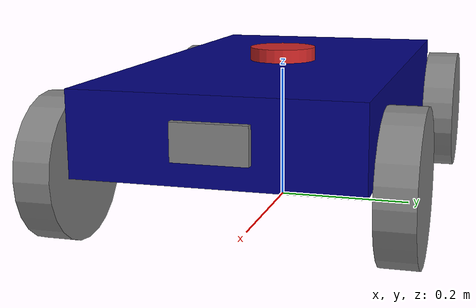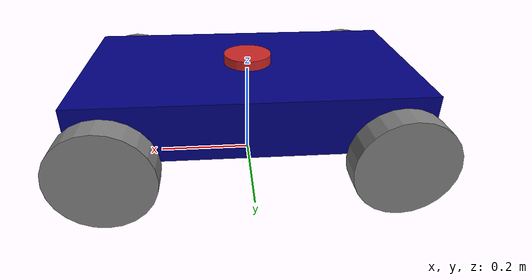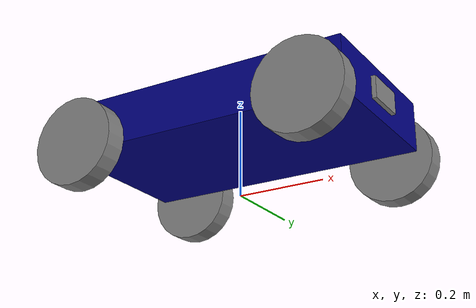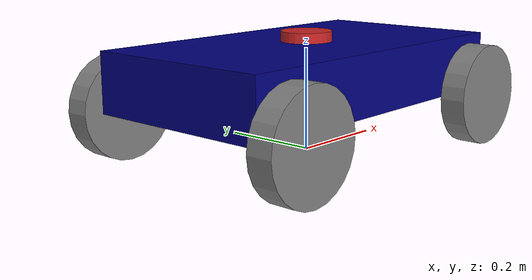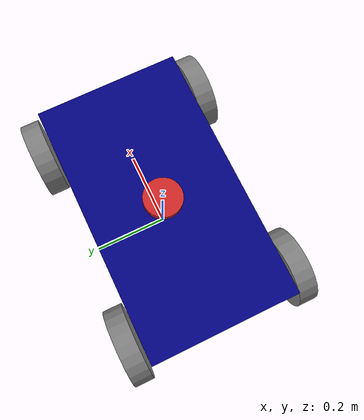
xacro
<?xml version="1.0"?>
<robot name="my_robot" xmlns:xacro="http://www.ros.org/wiki/xacro" xmlns:gz="http://gazebosim.org/schema">

    <xacro:include filename="common_properties.xacro"/>
    <xacro:include filename="mobile_base.xacro"/>
    <xacro:include filename="mobile_base_gazebo.xacro"/>
    <xacro:include filename="camera.xacro"/>
    <xacro:include filename="imu.xacro"/>
    <xacro:include filename="lidar.xacro"/>

</robot>

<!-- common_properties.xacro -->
<robot xmlns:xacro="http://www.ros.org/wiki/xacro">

    <material name="blue">
        <color rgba="0 0 0.5 1.0" />
    </material>

    <material name="grey">
        <color rgba="0.5 0.5 0.5 1.0" />
    </material>

    <material name="orange">
        <color rgba="1.0 0.5 0 1.0" />
    </material>

    <material name="yellow">
        <color rgba="1.0 1.0 0 1.0" />
    </material>

    <xacro:macro name="box_inertia" params="m x y z o_xyz o_rpy">
        <inertial>
            <mass value="${m}" />
            <origin xyz="${o_xyz}" rpy="${o_rpy}" />
            <inertia ixx="${(m/12.0) * (y*y + z*z)}" ixy="0" ixz="0"
                     iyy="${(m/12.0) * (x*x + z*z)}" iyz="0"
                     izz="${(m/12.0) * (x*x + y*y)}" />
        </inertial>
    </xacro:macro>

    <xacro:macro name="wheel_inertia" params="m r l o_xyz o_rpy">
        <inertial>
            <mass value="${m}" />
            <origin xyz="${o_xyz}" rpy="${o_rpy}" />
            <inertia ixx="${(m/12.0) * (3.0 * r * r + l * l)}" ixy="0" ixz="0"
                     iyy="${(m/12.0) * (3.0 * r * r + l * l)}" iyz="0"
                     izz="${(m/2) * (r * r)}" />
        </inertial>
    </xacro:macro>

    <xacro:macro name="caster_wheel_inertia" params="m r o_xyz o_rpy">
        <inertial>
            <mass value="${m}" />
            <origin xyz="${o_xyz}" rpy="${o_rpy}" />
            <inertia ixx="${(2.0 * m * r * r / 5)}" ixy="0" ixz="0"
                     iyy="${(2.0 * m * r * r / 5)}" iyz="0"
                     izz="${(2.0 * m * r * r / 5)}" />
        </inertial>
    </xacro:macro>

    <xacro:macro name="arm_inertia" params="m r h o_xyz o_rpy">
        <inertial>
            <mass value="${m}" />
            <origin xyz="${o_xyz}" rpy="${o_rpy}" />
            <inertia ixx="${(3.0 * m * r * r + h * h * m)/ 12}" ixy="0" ixz="0"
                     iyy="${(3.0 * m * r * r + h * h * m)/ 12}" iyz="0"
                     izz="${(m * r * r )/ 2}" />
        </inertial>
    </xacro:macro>

</robot>

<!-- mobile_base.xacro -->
<robot xmlns:xacro="http://www.ros.org/wiki/xacro">

    <xacro:property name="base_lenght" value="0.68"/>
    <xacro:property name="base_width" value="0.38"/>
    <xacro:property name="base_height" value="0.115"/>
    <xacro:property name="wheel_radius" value="0.1"/>
    <xacro:property name="wheel_length" value="0.05"/>

    <link name="base_footprint"/>

    <link name="base_link">
        <visual>
            <geometry>
                <box size="${base_lenght} ${base_width} ${base_height}" />
            </geometry>
            <origin xyz="0 0 ${base_height/2.0}" rpy="0 0 0" />
            <material name="blue" />
        </visual>
        <collision>
            <geometry>
                <!-- Narrower collision box to avoid any physical contact with the wheels -->
                <box size="${base_lenght*0.9} ${base_width*0.8} ${base_height*0.8}" />
            </geometry>
            <origin xyz="0 0 ${base_height/2.0}" rpy="0 0 0" />
       </collision>
        <xacro:box_inertia m="50.0" x="${base_lenght}" y="${base_width}" z="${base_height}"
                           o_xyz="0 0 ${base_height/2.0}" o_rpy="0 0 0" />
    </link>

    <xacro:include filename="mecanum_wheel.urdf.xacro"/>

    <joint name="base_joint" type="fixed">
        <parent link="base_footprint"/>
        <child link="base_link"/>
        <origin xyz="0 0 ${wheel_radius}" rpy="0 0 0"/>
    </joint>

    <!-- Mecanum Wheels with original cylinder visual, but mecanum collision & inertia -->
    <xacro:mecanum_wheel
        side="left_front"
        radius="${wheel_radius}"
        width="${wheel_length}"
        pos_x="${base_lenght / 2.5}"
        pos_y="${(base_width+wheel_length)/2.0 + 0.01}"
        pos_z="0"
        mass="3.0"
    />

    <xacro:mecanum_wheel
        side="right_front"
        radius="${wheel_radius}"
        width="${wheel_length}"
        pos_x="${base_lenght / 2.5}"
        pos_y="${-(base_width+wheel_length)/2.0 - 0.01}"
        pos_z="0"
        mass="3.0"
    />

    <xacro:mecanum_wheel
        side="left_back"
        radius="${wheel_radius}"
        width="${wheel_length}"
        pos_x="${-base_lenght / 2.5}"
        pos_y="${(base_width+wheel_length)/2.0 + 0.01}"
        pos_z="0"
        mass="3.0"
    />

    <xacro:mecanum_wheel
        side="right_back"
        radius="${wheel_radius}"
        width="${wheel_length}"
        pos_x="${-base_lenght / 2.5}"
        pos_y="${-(base_width+wheel_length)/2.0 - 0.01}"
        pos_z="0"
        mass="3.0"
    />

</robot>

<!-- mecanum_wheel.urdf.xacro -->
<robot xmlns:xacro="http://ros.org/wiki/xacro" xmlns:gz="http://gazebosim.org/schema">

  <xacro:macro name="mecanum_wheel" params="side radius width pos_x pos_y pos_z mass mesh_file:='' joint_name:='' link_name:=''">

    <xacro:property name="_link_name" value="${link_name if link_name != '' else side + '_wheel_link'}"/>
    <xacro:property name="_joint_name" value="${joint_name if joint_name != '' else 'base_' + side + '_wheel_joint'}"/>

    <link name="${_link_name}">
      <visual>
        <origin xyz="0 0 0" rpy="${pi/2} 0 0"/>
        <geometry>
          <cylinder radius="${radius}" length="${width}"/>
        </geometry>
        <material name="grey">
          <color rgba="0.5 0.5 0.5 1.0"/>
        </material>
      </visual>

      <collision>
        <origin xyz="0 0 0" rpy="${pi/2} 0 0"/>
        <geometry>
          <cylinder radius="${radius}" length="${width}"/>
        </geometry>
      </collision>

      <inertial>
        <origin xyz="0 0 0" rpy="0 0 0"/>
        <mass value="${mass}"/>
        <inertia ixx="${(1.0/12.0) * mass * (3.0*radius*radius + width*width)}" ixy="0" ixz="0"
                 iyy="${(1.0/2.0) * mass * (radius * radius)}" iyz="0"
                 izz="${(1.0/12.0) * mass * (3.0*radius*radius + width*width)}" />
      </inertial>
    </link>

    <gazebo reference="${_link_name}">
      <collision>
        <surface>
          <friction>
            <ode>
              <mu>1.2</mu>
              <mu2>0.15</mu2>
              <xacro:if value="${side == 'front_left' or side == 'left_front'}">
                <fdir1 gz:expressed_in="base_footprint">1 -1 0</fdir1>
              </xacro:if>
              <xacro:if value="${side == 'rear_left' or side == 'left_back'}">
                <fdir1 gz:expressed_in="base_footprint">1 1 0</fdir1>
              </xacro:if>
              <xacro:if value="${side == 'front_right' or side == 'right_front'}">
                <fdir1 gz:expressed_in="base_footprint">1 1 0</fdir1>
              </xacro:if>
              <xacro:if value="${side == 'rear_right' or side == 'right_back'}">
                <fdir1 gz:expressed_in="base_footprint">1 -1 0</fdir1>
              </xacro:if>
            </ode>
          </friction>
          <contact>
            <ode>
              <kp>10000000.0</kp>
              <kd>100.0</kd>
              <min_depth>0.001</min_depth>
              <max_vel>0.01</max_vel>
            </ode>
          </contact>
        </surface>
      </collision>
    </gazebo>

    <gazebo reference="${_link_name}">
      <visual>
        <material>
          <ambient>0.3 0.3 0.3 1.0</ambient>
          <diffuse>0.5 0.5 0.5 1.0</diffuse>
          <specular>0.2 0.2 0.2 1.0</specular>
          <emissive>0.0 0.0 0.0 0.0</emissive>
        </material>
      </visual>
    </gazebo>

    <joint name="${_joint_name}" type="continuous">
      <axis xyz="0 1 0" />
      <parent link="base_link"/>
      <child link="${_link_name}"/>
      <origin xyz="${pos_x} ${pos_y} ${pos_z}" rpy="0 0 0"/>
      <limit effort="10000" velocity="30"/>
      <dynamics damping="0.1" friction="0.1"/>
      <gazebo>
        <provideFeedback>true</provideFeedback>
      </gazebo>
    </joint>

  </xacro:macro>

</robot>

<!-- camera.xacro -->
<robot xmlns:xacro="http://www.ros.org/wiki/xacro">

    <link name="camera_link">
        <xacro:property name="camera_length" value="0.01"/>
        <xacro:property name="camera_width" value="0.1"/>
        <xacro:property name="camera_height" value="0.05"/>

        <visual>
            <geometry>
                <box size="${camera_length} ${camera_width} ${camera_height}"/>
            </geometry>
            <material name="grey" />
        </visual>
        <collision>
            <geometry>
                <box size="${camera_length} ${camera_width} ${camera_height}" />
            </geometry>
       </collision>
        <xacro:box_inertia m="0.1" x="${camera_length}" y="${camera_width}" z="${camera_height}"
                           o_xyz="0 0 0" o_rpy="0 0 0" />
    </link>

    <joint name="base_camera_joint" type="fixed">
        <parent link="base_link" />
        <child link="camera_link"/>
        <origin xyz="${(base_lenght+camera_length)/2.0} 0 ${base_height/2.0}" rpy="0 0 0"/>
    </joint>

    <link name="camera_link_optical" />

    <joint name="camera_optical_joint" type="fixed">
        <origin xyz="0 0 0" rpy="${-pi/2} 0 ${-pi/2}"/>
        <parent link="camera_link"/>
        <child link="camera_link_optical"/>
    </joint>

    <gazebo reference="camera_link">
        <sensor name="camera" type="camera">
            <camera>
                <horizontal_fov>1.3962634</horizontal_fov>
                <image>
                    <width>640</width>
                    <height>480</height>
                    <format>R8G8B8</format>
                </image>
                <clip>
                    <near>0.1</near>
                    <far>15</far>
                </clip>
                <noise>
                    <type>gaussian</type>
                    <mean>0.0</mean>
                    <stddev>0.007</stddev>
                </noise>
                <optical_frame_id>camera_link_optical</optical_frame_id>
                <camera_info_topic>camera/camera_info</camera_info_topic>
            </camera>
            <always_on>1</always_on>
            <update_rate>20</update_rate>
            <visualize>false</visualize>
            <topic>camera/image_raw</topic>
        </sensor>
    </gazebo>

</robot>

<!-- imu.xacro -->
<robot xmlns:xacro="http://www.ros.org/wiki/xacro">

    <link name="imu_link">
        <visual>
            <geometry>
                <box size="0.03 0.03 0.01"/>
            </geometry>
            <origin xyz="0 0 0" rpy="0 0 0"/>
            <material name="grey"/>
        </visual>
        <collision>
            <geometry>
                <box size="0.03 0.03 0.01"/>
            </geometry>
            <origin xyz="0 0 0" rpy="0 0 0"/>
        </collision>
        <xacro:box_inertia m="0.02" x="0.03" y="0.03" z="0.01"
                           o_xyz="0 0 0" o_rpy="0 0 0"/>
    </link>

    <joint name="base_imu_joint" type="fixed">
        <parent link="base_link"/>
        <child link="imu_link"/>
        <origin xyz="0 0 0.12" rpy="0 0 0"/>
    </joint>

    <gazebo reference="imu_link">
        <sensor name="imu_sensor" type="imu">
            <always_on>1</always_on>
            <update_rate>100</update_rate>
            <visualize>true</visualize>
            <topic>/imu/data</topic>
            <gz_frame_id>imu_link</gz_frame_id>
            <imu>
                <angular_velocity>
                    <x>
                        <noise type="gaussian">
                            <mean>0.0</mean>
                            <stddev>0.0002</stddev>
                        </noise>
                    </x>
                    <y>
                        <noise type="gaussian">
                            <mean>0.0</mean>
                            <stddev>0.0002</stddev>
                        </noise>
                    </y>
                    <z>
                        <noise type="gaussian">
                            <mean>0.0</mean>
                            <stddev>0.0002</stddev>
                        </noise>
                    </z>
                </angular_velocity>
                <linear_acceleration>
                    <x>
                        <noise type="gaussian">
                            <mean>0.0</mean>
                            <stddev>0.002</stddev>
                        </noise>
                    </x>
                    <y>
                        <noise type="gaussian">
                            <mean>0.0</mean>
                            <stddev>0.002</stddev>
                        </noise>
                    </y>
                    <z>
                        <noise type="gaussian">
                            <mean>0.0</mean>
                            <stddev>0.002</stddev>
                        </noise>
                    </z>
                </linear_acceleration>
            </imu>
        </sensor>
    </gazebo>

    <gazebo>
        <plugin
            filename="gz-sim-imu-system"
            name="gz::sim::systems::Imu">
        </plugin>
    </gazebo>

</robot>

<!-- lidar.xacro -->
<robot xmlns:xacro="http://www.ros.org/wiki/xacro">

    <joint name="laser_joint" type="fixed">
        <parent link="base_link"/>
        <child link="laser_frame"/>
        <origin xyz="0 0 0.115" rpy="0 0 0"/>
    </joint>

    <link name="laser_frame">
        <visual>
            <geometry>
                <cylinder radius="0.05" length="0.04"/>
            </geometry>
            <material name="red"/>
        </visual>
        <collision>
            <geometry>
                <cylinder radius="0.05" length="0.04"/>
            </geometry>
        </collision>
        <xacro:box_inertia m="0.1" x="0.1" y="0.1" z="0.1"
                           o_xyz="0 0 0" o_rpy="0 0 0" />
    </link>

    <gazebo reference="laser_frame">
        <sensor name="lidar" type="gpu_lidar">
            <pose>0 0 0 0 0 0</pose>
            <topic>scan</topic>
            <update_rate>10</update_rate>
            <gz_frame_id>laser_frame</gz_frame_id>
            <ray>
                <scan>
                    <horizontal>
                        <samples>360</samples>
                        <resolution>1</resolution>
                        <min_angle>-3.14</min_angle>
                        <max_angle>3.14</max_angle>
                    </horizontal>
                </scan>
                <range>
                    <min>0.1</min>
                    <max>12.0</max>
                    <resolution>0.01</resolution>
                </range>
            </ray>
            <visualize>true</visualize>
        </sensor>
    </gazebo>
</robot>
